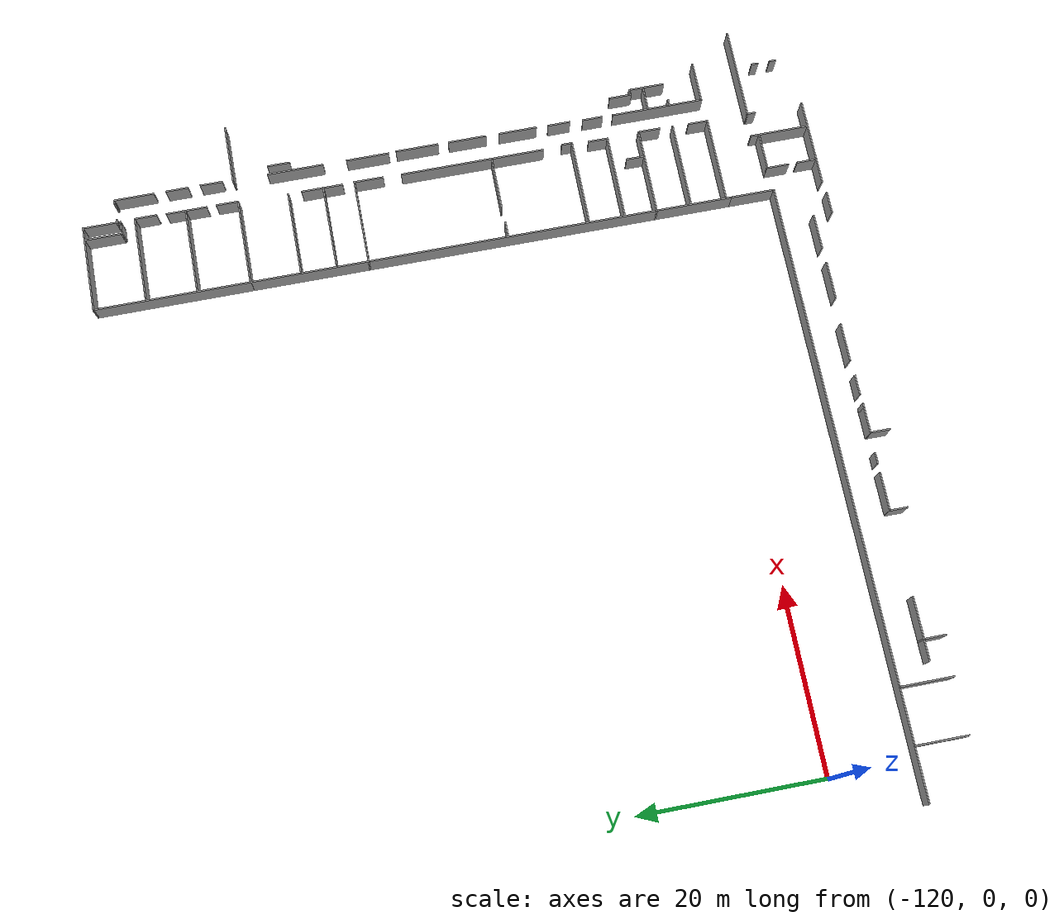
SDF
<sdf version="1.6">
 <model name="ensta_portes">
  <pose>1.28297 8.11006 0 0 -0 0</pose>
  <link name="Wall_469">
   <collision name="Wall_469_Collision">
    <geometry><box><size>4.5 0.15 2.5</size></box></geometry>
    <pose>0 0 1.25 0 -0 0</pose>
   </collision>
   <visual name="Wall_469_Visual">
    <pose>0 0 1.25 0 -0 0</pose>
    <geometry><box><size>4.5 0.15 2.5</size></box></geometry>
    <material>
     <script><uri>file://media/materials/scripts/gazebo.material</uri><name>Gazebo/Grey</name></script>
     <ambient>1 1 1 1</ambient>
    </material>
    <meta><layer>0</layer></meta>
   </visual>
   <pose>-46.3122 52.5283 0 0 -0 -1.5708</pose>
  </link>
  <link name="Wall_473">
   <collision name="Wall_473_Collision">
    <geometry><box><size>2.5 0.15 2.5</size></box></geometry>
    <pose>0 0 1.25 0 -0 0</pose>
   </collision>
   <visual name="Wall_473_Visual">
    <pose>0 0 1.25 0 -0 0</pose>
    <geometry><box><size>2.5 0.15 2.5</size></box></geometry>
    <material>
     <script><uri>file://media/materials/scripts/gazebo.material</uri><name>Gazebo/Grey</name></script>
     <ambient>1 1 1 1</ambient>
    </material>
    <meta><layer>0</layer></meta>
   </visual>
   <pose>-46.3118 47.7487 0 0 -0 -1.5708</pose>
  </link>
  <link name="Wall_477">
   <collision name="Wall_477_Collision">
    <geometry><box><size>2.5 0.15 2.5</size></box></geometry>
    <pose>0 0 1.25 0 -0 0</pose>
   </collision>
   <visual name="Wall_477_Visual">
    <pose>0 0 1.25 0 -0 0</pose>
    <geometry><box><size>2.5 0.15 2.5</size></box></geometry>
    <material>
     <script><uri>file://media/materials/scripts/gazebo.material</uri><name>Gazebo/Grey</name></script>
     <ambient>1 1 1 1</ambient>
    </material>
    <meta><layer>0</layer></meta>
   </visual>
   <pose>-46.3112 43.9271 0 0 -0 -1.5708</pose>
  </link>
  <link name="Wall_479">
   <collision name="Wall_479_Collision">
    <geometry><box><size>6.55968 0.15 2.5</size></box></geometry>
    <pose>0 0 1.25 0 -0 0</pose>
   </collision>
   <visual name="Wall_479_Visual">
    <pose>0 0 1.25 0 -0 0</pose>
    <geometry><box><size>6.55968 0.15 2.5</size></box></geometry>
    <material>
     <script><uri>file://media/materials/scripts/gazebo.material</uri><name>Gazebo/Grey</name></script>
     <ambient>1 1 1 1</ambient>
    </material>
    <meta><layer>0</layer></meta>
   </visual>
   <pose>-43.1663 41.5156 0 0 -0 -0.000377</pose>
  </link>
  <link name="Wall_482">
   <collision name="Wall_482_Collision">
    <geometry><box><size>0.5 0.15 2.5</size></box></geometry>
    <pose>0 0 1.25 0 -0 0</pose>
   </collision>
   <visual name="Wall_482_Visual">
    <pose>0 0 1.25 0 -0 0</pose>
    <geometry><box><size>0.5 0.15 2.5</size></box></geometry>
    <material>
     <script><uri>file://media/materials/scripts/gazebo.material</uri><name>Gazebo/Grey</name></script>
     <ambient>1 1 1 1</ambient>
    </material>
    <meta><layer>0</layer></meta>
   </visual>
   <pose>-46.4872 54.7033 0 0 -0 3.14159</pose>
  </link>
  <link name="Wall_485">
   <collision name="Wall_485_Collision">
    <geometry><box><size>0.5 0.15 2.5</size></box></geometry>
    <pose>0 0 1.25 0 -0 0</pose>
   </collision>
   <visual name="Wall_485_Visual">
    <pose>0 0 1.25 0 -0 0</pose>
    <geometry><box><size>0.5 0.15 2.5</size></box></geometry>
    <material>
     <script><uri>file://media/materials/scripts/gazebo.material</uri><name>Gazebo/Grey</name></script>
     <ambient>1 1 1 1</ambient>
    </material>
    <meta><layer>0</layer></meta>
   </visual>
   <pose>-48.7909 54.702 0 0 -0 0</pose>
  </link>
  <link name="Wall_487">
   <collision name="Wall_487_Collision">
    <geometry><box><size>4.25 0.15 2.5</size></box></geometry>
    <pose>0 0 1.25 0 -0 0</pose>
   </collision>
   <visual name="Wall_487_Visual">
    <pose>0 0 1.25 0 -0 0</pose>
    <geometry><box><size>4.25 0.15 2.5</size></box></geometry>
    <material>
     <script><uri>file://media/materials/scripts/gazebo.material</uri><name>Gazebo/Grey</name></script>
     <ambient>1 1 1 1</ambient>
    </material>
    <meta><layer>0</layer></meta>
   </visual>
   <pose>-48.9609 56.3858 0 0 -0 1.5708</pose>
  </link>
  <link name="Wall_488">
   <collision name="Wall_488_Collision">
    <geometry><box><size>9.75 0.15 2.5</size></box></geometry>
    <pose>0 0 1.25 0 -0 0</pose>
   </collision>
   <visual name="Wall_488_Visual">
    <pose>0 0 1.25 0 -0 0</pose>
    <geometry><box><size>9.75 0.15 2.5</size></box></geometry>
    <material>
     <script><uri>file://media/materials/scripts/gazebo.material</uri><name>Gazebo/Grey</name></script>
     <ambient>1 1 1 1</ambient>
    </material>
    <meta><layer>0</layer></meta>
   </visual>
   <pose>-53.7609 58.4358 0 0 -0 3.14159</pose>
  </link>
  <link name="Wall_490">
   <collision name="Wall_490_Collision">
    <geometry><box><size>17.25 0.15 2.5</size></box></geometry>
    <pose>0 0 1.25 0 -0 0</pose>
   </collision>
   <visual name="Wall_490_Visual">
    <pose>0 0 1.25 0 -0 0</pose>
    <geometry><box><size>17.25 0.15 2.5</size></box></geometry>
    <material>
     <script><uri>file://media/materials/scripts/gazebo.material</uri><name>Gazebo/Grey</name></script>
     <ambient>1 1 1 1</ambient>
    </material>
    <meta><layer>0</layer></meta>
   </visual>
   <pose>-58.5609 49.8858 0 0 -0 -1.5708</pose>
  </link>
  <link name="Wall_491">
   <collision name="Wall_491_Collision">
    <geometry><box><size>9.75 0.15 2.5</size></box></geometry>
    <pose>0 0 1.25 0 -0 0</pose>
   </collision>
   <visual name="Wall_491_Visual">
    <pose>0 0 1.25 0 -0 0</pose>
    <geometry><box><size>9.75 0.15 2.5</size></box></geometry>
    <material>
     <script><uri>file://media/materials/scripts/gazebo.material</uri><name>Gazebo/Grey</name></script>
     <ambient>1 1 1 1</ambient>
    </material>
    <meta><layer>0</layer></meta>
   </visual>
   <pose>-53.7609 41.3358 0 0 -0 0</pose>
  </link>
  <link name="Wall_492">
   <collision name="Wall_492_Collision">
    <geometry><box><size>2.5 0.15 2.5</size></box></geometry>
    <pose>0 0 1.25 0 -0 0</pose>
   </collision>
   <visual name="Wall_492_Visual">
    <pose>0 0 1.25 0 -0 0</pose>
    <geometry><box><size>2.5 0.15 2.5</size></box></geometry>
    <material>
     <script><uri>file://media/materials/scripts/gazebo.material</uri><name>Gazebo/Grey</name></script>
     <ambient>1 1 1 1</ambient>
    </material>
    <meta><layer>0</layer></meta>
   </visual>
   <pose>-48.9609 42.5108 0 0 -0 1.5708</pose>
  </link>
  <link name="Wall_494">
   <collision name="Wall_494_Collision">
    <geometry><box><size>9.5 0.15 2.5</size></box></geometry>
    <pose>0 0 1.25 0 -0 0</pose>
   </collision>
   <visual name="Wall_494_Visual">
    <pose>0 0 1.25 0 -0 0</pose>
    <geometry><box><size>9.5 0.15 2.5</size></box></geometry>
    <material>
     <script><uri>file://media/materials/scripts/gazebo.material</uri><name>Gazebo/Grey</name></script>
     <ambient>1 1 1 1</ambient>
    </material>
    <meta><layer>0</layer></meta>
   </visual>
   <pose>-53.7357 47.141 0 0 -0 0</pose>
  </link>
  <link name="Wall_496">
   <collision name="Wall_496_Collision">
    <geometry><box><size>4.5 0.15 2.5</size></box></geometry>
    <pose>0 0 1.25 0 -0 0</pose>
   </collision>
   <visual name="Wall_496_Visual">
    <pose>0 0 1.25 0 -0 0</pose>
    <geometry><box><size>4.5 0.15 2.5</size></box></geometry>
    <material>
     <script><uri>file://media/materials/scripts/gazebo.material</uri><name>Gazebo/Grey</name></script>
     <ambient>1 1 1 1</ambient>
    </material>
    <meta><layer>0</layer></meta>
   </visual>
   <pose>-48.9747 47.0376 0 0 -0 -1.5708</pose>
  </link>
  <link name="Wall_498">
   <collision name="Wall_498_Collision">
    <geometry><box><size>9.75 0.15 2.5</size></box></geometry>
    <pose>0 0 1.25 0 -0 0</pose>
   </collision>
   <visual name="Wall_498_Visual">
    <pose>0 0 1.25 0 -0 0</pose>
    <geometry><box><size>9.75 0.15 2.5</size></box></geometry>
    <material>
     <script><uri>file://media/materials/scripts/gazebo.material</uri><name>Gazebo/Grey</name></script>
     <ambient>1 1 1 1</ambient>
    </material>
    <meta><layer>0</layer></meta>
   </visual>
   <pose>-53.6978 52.7407 0 0 -0 0</pose>
  </link>
  <link name="Wall_499">
   <collision name="Wall_499_Collision">
    <geometry><box><size>2.5 0.15 2.5</size></box></geometry>
    <pose>0 0 1.25 0 -0 0</pose>
   </collision>
   <visual name="Wall_499_Visual">
    <pose>0 0 1.25 0 -0 0</pose>
    <geometry><box><size>2.5 0.15 2.5</size></box></geometry>
    <material>
     <script><uri>file://media/materials/scripts/gazebo.material</uri><name>Gazebo/Grey</name></script>
     <ambient>1 1 1 1</ambient>
    </material>
    <meta><layer>0</layer></meta>
   </visual>
   <pose>-48.8978 51.5657 0 0 -0 -1.5708</pose>
  </link>
  <link name="Wall_501">
   <collision name="Wall_501_Collision">
    <geometry><box><size>4.25 0.15 2.5</size></box></geometry>
    <pose>0 0 1.25 0 -0 0</pose>
   </collision>
   <visual name="Wall_501_Visual">
    <pose>0 0 1.25 0 -0 0</pose>
    <geometry><box><size>4.25 0.15 2.5</size></box></geometry>
    <material>
     <script><uri>file://media/materials/scripts/gazebo.material</uri><name>Gazebo/Grey</name></script>
     <ambient>1 1 1 1</ambient>
    </material>
    <meta><layer>0</layer></meta>
   </visual>
   <pose>-50.364 56.3784 0 0 -0 -1.5708</pose>
  </link>
  <link name="Wall_502">
   <collision name="Wall_502_Collision">
    <geometry><box><size>1.55314 0.15 2.5</size></box></geometry>
    <pose>0 0 1.25 0 -0 0</pose>
   </collision>
   <visual name="Wall_502_Visual">
    <pose>0 0 1.25 0 -0 0</pose>
    <geometry><box><size>1.55314 0.15 2.5</size></box></geometry>
    <material>
     <script><uri>file://media/materials/scripts/gazebo.material</uri><name>Gazebo/Grey</name></script>
     <ambient>1 1 1 1</ambient>
    </material>
    <meta><layer>0</layer></meta>
   </visual>
   <pose>-49.6624 54.3321 0 0 -0 0.005278</pose>
  </link>
  <link name="Wall_505">
   <collision name="Wall_505_Collision">
    <geometry><box><size>53.5 0.15 2.5</size></box></geometry>
    <pose>0 0 1.25 0 -0 0</pose>
   </collision>
   <visual name="Wall_505_Visual">
    <pose>0 0 1.25 0 -0 0</pose>
    <geometry><box><size>53.5 0.15 2.5</size></box></geometry>
    <material>
     <script><uri>file://media/materials/scripts/gazebo.material</uri><name>Gazebo/Grey</name></script>
     <ambient>1 1 1 1</ambient>
    </material>
    <meta><layer>0</layer></meta>
   </visual>
   <pose>-58.5609 14.6608 0 0 -0 -1.5708</pose>
  </link>
  <link name="Wall_507">
   <collision name="Wall_507_Collision">
    <geometry><box><size>9.5 0.15 2.5</size></box></geometry>
    <pose>0 0 1.25 0 -0 0</pose>
   </collision>
   <visual name="Wall_507_Visual">
    <pose>0 0 1.25 0 -0 0</pose>
    <geometry><box><size>9.5 0.15 2.5</size></box></geometry>
    <material>
     <script><uri>file://media/materials/scripts/gazebo.material</uri><name>Gazebo/Grey</name></script>
     <ambient>1 1 1 1</ambient>
    </material>
    <meta><layer>0</layer></meta>
   </visual>
   <pose>-53.7488 -11.4871 0 0 -0 0</pose>
  </link>
  <link name="Wall_508">
   <collision name="Wall_508_Collision">
    <geometry><box><size>2.25 0.15 2.5</size></box></geometry>
    <pose>0 0 1.25 0 -0 0</pose>
   </collision>
   <visual name="Wall_508_Visual">
    <pose>0 0 1.25 0 -0 0</pose>
    <geometry><box><size>2.25 0.15 2.5</size></box></geometry>
    <material>
     <script><uri>file://media/materials/scripts/gazebo.material</uri><name>Gazebo/Grey</name></script>
     <ambient>1 1 1 1</ambient>
    </material>
    <meta><layer>0</layer></meta>
   </visual>
   <pose>-49.0738 -10.4371 0 0 -0 1.5708</pose>
  </link>
  <link name="Wall_510">
   <collision name="Wall_510_Collision">
    <geometry><box><size>9.5 0.15 2.5</size></box></geometry>
    <pose>0 0 1.25 0 -0 0</pose>
   </collision>
   <visual name="Wall_510_Visual">
    <pose>0 0 1.25 0 -0 0</pose>
    <geometry><box><size>9.5 0.15 2.5</size></box></geometry>
    <material>
     <script><uri>file://media/materials/scripts/gazebo.material</uri><name>Gazebo/Grey</name></script>
     <ambient>1 1 1 1</ambient>
    </material>
    <meta><layer>0</layer></meta>
   </visual>
   <pose>-53.7488 -7.54481 0 0 -0 0</pose>
  </link>
  <link name="Wall_512">
   <collision name="Wall_512_Collision">
    <geometry><box><size>9.75 0.15 2.5</size></box></geometry>
    <pose>0 0 1.25 0 -0 0</pose>
   </collision>
   <visual name="Wall_512_Visual">
    <pose>0 0 1.25 0 -0 0</pose>
    <geometry><box><size>9.75 0.15 2.5</size></box></geometry>
    <material>
     <script><uri>file://media/materials/scripts/gazebo.material</uri><name>Gazebo/Grey</name></script>
     <ambient>1 1 1 1</ambient>
    </material>
    <meta><layer>0</layer></meta>
   </visual>
   <pose>-53.784 -3.68033 0 0 -0 0</pose>
  </link>
  <link name="Wall_513">
   <collision name="Wall_513_Collision">
    <geometry><box><size>2.5 0.15 2.5</size></box></geometry>
    <pose>0 0 1.25 0 -0 0</pose>
   </collision>
   <visual name="Wall_513_Visual">
    <pose>0 0 1.25 0 -0 0</pose>
    <geometry><box><size>2.5 0.15 2.5</size></box></geometry>
    <material>
     <script><uri>file://media/materials/scripts/gazebo.material</uri><name>Gazebo/Grey</name></script>
     <ambient>1 1 1 1</ambient>
    </material>
    <meta><layer>0</layer></meta>
   </visual>
   <pose>-48.984 -4.85533 0 0 -0 -1.5708</pose>
  </link>
  <link name="Wall_515">
   <collision name="Wall_515_Collision">
    <geometry><box><size>2 0.15 2.5</size></box></geometry>
    <pose>0 0 1.25 0 -0 0</pose>
   </collision>
   <visual name="Wall_515_Visual">
    <pose>0 0 1.25 0 -0 0</pose>
    <geometry><box><size>2 0.15 2.5</size></box></geometry>
    <material>
     <script><uri>file://media/materials/scripts/gazebo.material</uri><name>Gazebo/Grey</name></script>
     <ambient>1 1 1 1</ambient>
    </material>
    <meta><layer>0</layer></meta>
   </visual>
   <pose>-51.9715 -2.67448 0 0 -0 -1.5708</pose>
  </link>
  <link name="Wall_517">
   <collision name="Wall_517_Collision">
    <geometry><box><size>9.5 0.15 2.5</size></box></geometry>
    <pose>0 0 1.25 0 -0 0</pose>
   </collision>
   <visual name="Wall_517_Visual">
    <pose>0 0 1.25 0 -0 0</pose>
    <geometry><box><size>9.5 0.15 2.5</size></box></geometry>
    <material>
     <script><uri>file://media/materials/scripts/gazebo.material</uri><name>Gazebo/Grey</name></script>
     <ambient>1 1 1 1</ambient>
    </material>
    <meta><layer>0</layer></meta>
   </visual>
   <pose>-53.7767 -0.109576 0 0 -0 0</pose>
  </link>
  <link name="Wall_518">
   <collision name="Wall_518_Collision">
    <geometry><box><size>2.25 0.15 2.5</size></box></geometry>
    <pose>0 0 1.25 0 -0 0</pose>
   </collision>
   <visual name="Wall_518_Visual">
    <pose>0 0 1.25 0 -0 0</pose>
    <geometry><box><size>2.25 0.15 2.5</size></box></geometry>
    <material>
     <script><uri>file://media/materials/scripts/gazebo.material</uri><name>Gazebo/Grey</name></script>
     <ambient>1 1 1 1</ambient>
    </material>
    <meta><layer>0</layer></meta>
   </visual>
   <pose>-49.1017 0.940424 0 0 -0 1.5708</pose>
  </link>
  <link name="Wall_520">
   <collision name="Wall_520_Collision">
    <geometry><box><size>9.75 0.15 2.5</size></box></geometry>
    <pose>0 0 1.25 0 -0 0</pose>
   </collision>
   <visual name="Wall_520_Visual">
    <pose>0 0 1.25 0 -0 0</pose>
    <geometry><box><size>9.75 0.15 2.5</size></box></geometry>
    <material>
     <script><uri>file://media/materials/scripts/gazebo.material</uri><name>Gazebo/Grey</name></script>
     <ambient>1 1 1 1</ambient>
    </material>
    <meta><layer>0</layer></meta>
   </visual>
   <pose>-53.7046 3.88437 0 0 -0 0</pose>
  </link>
  <link name="Wall_521">
   <collision name="Wall_521_Collision">
    <geometry><box><size>1.25 0.15 2.5</size></box></geometry>
    <pose>0 0 1.25 0 -0 0</pose>
   </collision>
   <visual name="Wall_521_Visual">
    <pose>0 0 1.25 0 -0 0</pose>
    <geometry><box><size>1.25 0.15 2.5</size></box></geometry>
    <material>
     <script><uri>file://media/materials/scripts/gazebo.material</uri><name>Gazebo/Grey</name></script>
     <ambient>1 1 1 1</ambient>
    </material>
    <meta><layer>0</layer></meta>
   </visual>
   <pose>-48.9046 4.43437 0 0 -0 1.5708</pose>
  </link>
  <link name="Wall_523">
   <collision name="Wall_523_Collision">
    <geometry><box><size>1.75 0.15 2.5</size></box></geometry>
    <pose>0 0 1.25 0 -0 0</pose>
   </collision>
   <visual name="Wall_523_Visual">
    <pose>0 0 1.25 0 -0 0</pose>
    <geometry><box><size>1.75 0.15 2.5</size></box></geometry>
    <material>
     <script><uri>file://media/materials/scripts/gazebo.material</uri><name>Gazebo/Grey</name></script>
     <ambient>1 1 1 1</ambient>
    </material>
    <meta><layer>0</layer></meta>
   </visual>
   <pose>-57.6517 12.9038 0 0 -0 0</pose>
  </link>
  <link name="Wall_525">
   <collision name="Wall_525_Collision">
    <geometry><box><size>6 0.15 2.5</size></box></geometry>
    <pose>0 0 1.25 0 -0 0</pose>
   </collision>
   <visual name="Wall_525_Visual">
    <pose>0 0 1.25 0 -0 0</pose>
    <geometry><box><size>6 0.15 2.5</size></box></geometry>
    <material>
     <script><uri>file://media/materials/scripts/gazebo.material</uri><name>Gazebo/Grey</name></script>
     <ambient>1 1 1 1</ambient>
    </material>
    <meta><layer>0</layer></meta>
   </visual>
   <pose>-52.0353 12.9832 0 0 -0 0</pose>
  </link>
  <link name="Wall_527">
   <collision name="Wall_527_Collision">
    <geometry><box><size>16 0.15 2.5</size></box></geometry>
    <pose>0 0 1.25 0 -0 0</pose>
   </collision>
   <visual name="Wall_527_Visual">
    <pose>0 0 1.25 0 -0 0</pose>
    <geometry><box><size>16 0.15 2.5</size></box></geometry>
    <material>
     <script><uri>file://media/materials/scripts/gazebo.material</uri><name>Gazebo/Grey</name></script>
     <ambient>1 1 1 1</ambient>
    </material>
    <meta><layer>0</layer></meta>
   </visual>
   <pose>-49.121 15.1568 0 0 -0 1.5708</pose>
  </link>
  <link name="Wall_529">
   <collision name="Wall_529_Collision">
    <geometry><box><size>9.65091 0.15 2.5</size></box></geometry>
    <pose>0 0 1.25 0 -0 0</pose>
   </collision>
   <visual name="Wall_529_Visual">
    <pose>0 0 1.25 0 -0 0</pose>
    <geometry><box><size>9.65091 0.15 2.5</size></box></geometry>
    <material>
     <script><uri>file://media/materials/scripts/gazebo.material</uri><name>Gazebo/Grey</name></script>
     <ambient>1 1 1 1</ambient>
    </material>
    <meta><layer>0</layer></meta>
   </visual>
   <pose>-53.8122 28.381 0 0 -0 0.00217</pose>
  </link>
  <link name="Wall_530">
   <collision name="Wall_530_Collision">
    <geometry><box><size>3.30626 0.15 2.5</size></box></geometry>
    <pose>0 0 1.25 0 -0 0</pose>
   </collision>
   <visual name="Wall_530_Visual">
    <pose>0 0 1.25 0 -0 0</pose>
    <geometry><box><size>3.30626 0.15 2.5</size></box></geometry>
    <material>
     <script><uri>file://media/materials/scripts/gazebo.material</uri><name>Gazebo/Grey</name></script>
     <ambient>1 1 1 1</ambient>
    </material>
    <meta><layer>0</layer></meta>
   </visual>
   <pose>-49.0675 26.8133 0 0 -0 -1.57442</pose>
  </link>
  <link name="Wall_532">
   <collision name="Wall_532_Collision">
    <geometry><box><size>9.5 0.15 2.5</size></box></geometry>
    <pose>0 0 1.25 0 -0 0</pose>
   </collision>
   <visual name="Wall_532_Visual">
    <pose>0 0 1.25 0 -0 0</pose>
    <geometry><box><size>9.5 0.15 2.5</size></box></geometry>
    <material>
     <script><uri>file://media/materials/scripts/gazebo.material</uri><name>Gazebo/Grey</name></script>
     <ambient>1 1 1 1</ambient>
    </material>
    <meta><layer>0</layer></meta>
   </visual>
   <pose>-53.7851 31.8701 0 0 -0 0</pose>
  </link>
  <link name="Wall_533">
   <collision name="Wall_533_Collision">
    <geometry><box><size>2.25 0.15 2.5</size></box></geometry>
    <pose>0 0 1.25 0 -0 0</pose>
   </collision>
   <visual name="Wall_533_Visual">
    <pose>0 0 1.25 0 -0 0</pose>
    <geometry><box><size>2.25 0.15 2.5</size></box></geometry>
    <material>
     <script><uri>file://media/materials/scripts/gazebo.material</uri><name>Gazebo/Grey</name></script>
     <ambient>1 1 1 1</ambient>
    </material>
    <meta><layer>0</layer></meta>
   </visual>
   <pose>-49.1101 30.8201 0 0 -0 -1.5708</pose>
  </link>
  <link name="Wall_535">
   <collision name="Wall_535_Collision">
    <geometry><box><size>2.5 0.15 2.5</size></box></geometry>
    <pose>0 0 1.25 0 -0 0</pose>
   </collision>
   <visual name="Wall_535_Visual">
    <pose>0 0 1.25 0 -0 0</pose>
    <geometry><box><size>2.5 0.15 2.5</size></box></geometry>
    <material>
     <script><uri>file://media/materials/scripts/gazebo.material</uri><name>Gazebo/Grey</name></script>
     <ambient>1 1 1 1</ambient>
    </material>
    <meta><layer>0</layer></meta>
   </visual>
   <pose>-49.1101 33.0451 0 0 -0 1.5708</pose>
  </link>
  <link name="Wall_537">
   <collision name="Wall_537_Collision">
    <geometry><box><size>9.5 0.15 2.5</size></box></geometry>
    <pose>0 0 1.25 0 -0 0</pose>
   </collision>
   <visual name="Wall_537_Visual">
    <pose>0 0 1.25 0 -0 0</pose>
    <geometry><box><size>9.5 0.15 2.5</size></box></geometry>
    <material>
     <script><uri>file://media/materials/scripts/gazebo.material</uri><name>Gazebo/Grey</name></script>
     <ambient>1 1 1 1</ambient>
    </material>
    <meta><layer>0</layer></meta>
   </visual>
   <pose>-53.8189 35.7869 0 0 -0 0</pose>
  </link>
  <link name="Wall_550">
   <collision name="Wall_550_Collision">
    <geometry><box><size>4.5 0.15 2.5</size></box></geometry>
    <pose>0 0 1.25 0 -0 0</pose>
   </collision>
   <visual name="Wall_550_Visual">
    <pose>0 0 1.25 0 -0 0</pose>
    <geometry><box><size>4.5 0.15 2.5</size></box></geometry>
    <material>
     <script><uri>file://media/materials/scripts/gazebo.material</uri><name>Gazebo/Grey</name></script>
     <ambient>1 1 1 1</ambient>
    </material>
    <meta><layer>0</layer></meta>
   </visual>
   <pose>-44.1564 -11.3717 0 0 -0 0</pose>
  </link>
  <link name="Wall_552">
   <collision name="Wall_552_Collision">
    <geometry><box><size>10.2038 0.15 2.5</size></box></geometry>
    <pose>0 0 1.25 0 -0 0</pose>
   </collision>
   <visual name="Wall_552_Visual">
    <pose>0 0 1.25 0 -0 0</pose>
    <geometry><box><size>10.2038 0.15 2.5</size></box></geometry>
    <material>
     <script><uri>file://media/materials/scripts/gazebo.material</uri><name>Gazebo/Grey</name></script>
     <ambient>1 1 1 1</ambient>
    </material>
    <meta><layer>0</layer></meta>
   </visual>
   <pose>-46.4305 -6.35933 0 0 -0 -1.56963</pose>
  </link>
  <link name="Wall_558">
   <collision name="Wall_558_Collision">
    <geometry><box><size>2.5 0.15 2.5</size></box></geometry>
    <pose>0 0 1.25 0 -0 0</pose>
   </collision>
   <visual name="Wall_558_Visual">
    <pose>0 0 1.25 0 -0 0</pose>
    <geometry><box><size>2.5 0.15 2.5</size></box></geometry>
    <material>
     <script><uri>file://media/materials/scripts/gazebo.material</uri><name>Gazebo/Grey</name></script>
     <ambient>1 1 1 1</ambient>
    </material>
    <meta><layer>0</layer></meta>
   </visual>
   <pose>-44.3428 -2.56274 0 0 -0 -1.5708</pose>
  </link>
  <link name="Wall_559">
   <collision name="Wall_559_Collision">
    <geometry><box><size>0.75 0.15 2.5</size></box></geometry>
    <pose>0 0 1.25 0 -0 0</pose>
   </collision>
   <visual name="Wall_559_Visual">
    <pose>0 0 1.25 0 -0 0</pose>
    <geometry><box><size>0.75 0.15 2.5</size></box></geometry>
    <material>
     <script><uri>file://media/materials/scripts/gazebo.material</uri><name>Gazebo/Grey</name></script>
     <ambient>1 1 1 1</ambient>
    </material>
    <meta><layer>0</layer></meta>
   </visual>
   <pose>-44.0428 -3.73774 0 0 -0 0</pose>
  </link>
  <link name="Wall_560">
   <collision name="Wall_560_Collision">
    <geometry><box><size>4 0.15 2.5</size></box></geometry>
    <pose>0 0 1.25 0 -0 0</pose>
   </collision>
   <visual name="Wall_560_Visual">
    <pose>0 0 1.25 0 -0 0</pose>
    <geometry><box><size>4 0.15 2.5</size></box></geometry>
    <material>
     <script><uri>file://media/materials/scripts/gazebo.material</uri><name>Gazebo/Grey</name></script>
     <ambient>1 1 1 1</ambient>
    </material>
    <meta><layer>0</layer></meta>
   </visual>
   <pose>-43.7428 -5.66274 0 0 -0 -1.5708</pose>
  </link>
  <link name="Wall_564">
   <collision name="Wall_564_Collision">
    <geometry><box><size>2.68329 0.15 2.5</size></box></geometry>
    <pose>0 0 1.25 0 -0 0</pose>
   </collision>
   <visual name="Wall_564_Visual">
    <pose>0 0 1.25 0 -0 0</pose>
    <geometry><box><size>2.68329 0.15 2.5</size></box></geometry>
    <material>
     <script><uri>file://media/materials/scripts/gazebo.material</uri><name>Gazebo/Grey</name></script>
     <ambient>1 1 1 1</ambient>
    </material>
    <meta><layer>0</layer></meta>
   </visual>
   <pose>-45.0229 -5.28625 0 0 -0 -0.004006</pose>
  </link>
  <link name="Wall_566">
   <collision name="Wall_566_Collision">
    <geometry><box><size>0.75 0.15 2.5</size></box></geometry>
    <pose>0 0 1.25 0 -0 0</pose>
   </collision>
   <visual name="Wall_566_Visual">
    <pose>0 0 1.25 0 -0 0</pose>
    <geometry><box><size>0.75 0.15 2.5</size></box></geometry>
    <material>
     <script><uri>file://media/materials/scripts/gazebo.material</uri><name>Gazebo/Grey</name></script>
     <ambient>1 1 1 1</ambient>
    </material>
    <meta><layer>0</layer></meta>
   </visual>
   <pose>-46.0293 -7.73485 0 0 -0 0</pose>
  </link>
  <link name="Wall_570">
   <collision name="Wall_570_Collision">
    <geometry><box><size>2.25 0.15 2.5</size></box></geometry>
    <pose>0 0 1.25 0 -0 0</pose>
   </collision>
   <visual name="Wall_570_Visual">
    <pose>0 0 1.25 0 -0 0</pose>
    <geometry><box><size>2.25 0.15 2.5</size></box></geometry>
    <material>
     <script><uri>file://media/materials/scripts/gazebo.material</uri><name>Gazebo/Grey</name></script>
     <ambient>1 1 1 1</ambient>
    </material>
    <meta><layer>0</layer></meta>
   </visual>
   <pose>-46.4112 1.03105 0 0 -0 -1.5708</pose>
  </link>
  <link name="Wall_572">
   <collision name="Wall_572_Collision">
    <geometry><box><size>2.5 0.15 2.5</size></box></geometry>
    <pose>0 0 1.25 0 -0 0</pose>
   </collision>
   <visual name="Wall_572_Visual">
    <pose>0 0 1.25 0 -0 0</pose>
    <geometry><box><size>2.5 0.15 2.5</size></box></geometry>
    <material>
     <script><uri>file://media/materials/scripts/gazebo.material</uri><name>Gazebo/Grey</name></script>
     <ambient>1 1 1 1</ambient>
    </material>
    <meta><layer>0</layer></meta>
   </visual>
   <pose>-46.3487 4.86109 0 0 -0 -1.5708</pose>
  </link>
  <link name="Wall_575">
   <collision name="Wall_575_Collision">
    <geometry><box><size>4.25 0.15 2.5</size></box></geometry>
    <pose>0 0 1.25 0 -0 0</pose>
   </collision>
   <visual name="Wall_575_Visual">
    <pose>0 0 1.25 0 -0 0</pose>
    <geometry><box><size>4.25 0.15 2.5</size></box></geometry>
    <material>
     <script><uri>file://media/materials/scripts/gazebo.material</uri><name>Gazebo/Grey</name></script>
     <ambient>1 1 1 1</ambient>
    </material>
    <meta><layer>0</layer></meta>
   </visual>
   <pose>-46.3088 9.5206 0 0 -0 -1.5708</pose>
  </link>
  <link name="Wall_578">
   <collision name="Wall_578_Collision">
    <geometry><box><size>4.25 0.15 2.5</size></box></geometry>
    <pose>0 0 1.25 0 -0 0</pose>
   </collision>
   <visual name="Wall_578_Visual">
    <pose>0 0 1.25 0 -0 0</pose>
    <geometry><box><size>4.25 0.15 2.5</size></box></geometry>
    <material>
     <script><uri>file://media/materials/scripts/gazebo.material</uri><name>Gazebo/Grey</name></script>
     <ambient>1 1 1 1</ambient>
    </material>
    <meta><layer>0</layer></meta>
   </visual>
   <pose>-46.2945 15.2404 0 0 -0 -1.5708</pose>
  </link>
  <link name="Wall_581">
   <collision name="Wall_581_Collision">
    <geometry><box><size>4.75 0.15 2.5</size></box></geometry>
    <pose>0 0 1.25 0 -0 0</pose>
   </collision>
   <visual name="Wall_581_Visual">
    <pose>0 0 1.25 0 -0 0</pose>
    <geometry><box><size>4.75 0.15 2.5</size></box></geometry>
    <material>
     <script><uri>file://media/materials/scripts/gazebo.material</uri><name>Gazebo/Grey</name></script>
     <ambient>1 1 1 1</ambient>
    </material>
    <meta><layer>0</layer></meta>
   </visual>
   <pose>-46.285 20.9046 0 0 -0 -1.5708</pose>
  </link>
  <link name="Wall_585">
   <collision name="Wall_585_Collision">
    <geometry><box><size>4.75 0.15 2.5</size></box></geometry>
    <pose>0 0 1.25 0 -0 0</pose>
   </collision>
   <visual name="Wall_585_Visual">
    <pose>0 0 1.25 0 -0 0</pose>
    <geometry><box><size>4.75 0.15 2.5</size></box></geometry>
    <material>
     <script><uri>file://media/materials/scripts/gazebo.material</uri><name>Gazebo/Grey</name></script>
     <ambient>1 1 1 1</ambient>
    </material>
    <meta><layer>0</layer></meta>
   </visual>
   <pose>-46.3512 26.4731 0 0 -0 -1.5708</pose>
  </link>
  <link name="Wall_590">
   <collision name="Wall_590_Collision">
    <geometry><box><size>6.25 0.15 2.5</size></box></geometry>
    <pose>0 0 1.25 0 -0 0</pose>
   </collision>
   <visual name="Wall_590_Visual">
    <pose>0 0 1.25 0 -0 0</pose>
    <geometry><box><size>6.25 0.15 2.5</size></box></geometry>
    <material>
     <script><uri>file://media/materials/scripts/gazebo.material</uri><name>Gazebo/Grey</name></script>
     <ambient>1 1 1 1</ambient>
    </material>
    <meta><layer>0</layer></meta>
   </visual>
   <pose>-46.354 34.569 0 0 -0 -1.5708</pose>
  </link>
  <link name="Wall_592">
   <collision name="Wall_592_Collision">
    <geometry><box><size>2.5 0.15 2.5</size></box></geometry>
    <pose>0 0 1.25 0 -0 0</pose>
   </collision>
   <visual name="Wall_592_Visual">
    <pose>0 0 1.25 0 -0 0</pose>
    <geometry><box><size>2.5 0.15 2.5</size></box></geometry>
    <material>
     <script><uri>file://media/materials/scripts/gazebo.material</uri><name>Gazebo/Grey</name></script>
     <ambient>1 1 1 1</ambient>
    </material>
    <meta><layer>0</layer></meta>
   </visual>
   <pose>-45.4033 36.2924 0 0 -0 -1.5708</pose>
  </link>
  <link name="Wall_597">
   <collision name="Wall_597_Collision">
    <geometry><box><size>5 0.15 2.5</size></box></geometry>
    <pose>0 0 1.25 0 -0 0</pose>
   </collision>
   <visual name="Wall_597_Visual">
    <pose>0 0 1.25 0 -0 0</pose>
    <geometry><box><size>5 0.15 2.5</size></box></geometry>
    <material>
     <script><uri>file://media/materials/scripts/gazebo.material</uri><name>Gazebo/Grey</name></script>
     <ambient>1 1 1 1</ambient>
    </material>
    <meta><layer>0</layer></meta>
   </visual>
   <pose>-58.5609 -14.4392 0 0 -0 -1.5708</pose>
  </link>
  <link name="Wall_598">
   <collision name="Wall_598_Collision">
    <geometry><box><size>67.1 0.15 2.5</size></box></geometry>
    <pose>0 0 1.25 0 -0 0</pose>
   </collision>
   <visual name="Wall_598_Visual">
    <pose>0 0 1.25 0 -0 0</pose>
    <geometry><box><size>67.1 0.15 2.5</size></box></geometry>
    <material>
     <script><uri>file://media/materials/scripts/gazebo.material</uri><name>Gazebo/Grey</name></script>
     <ambient>1 1 1 1</ambient>
    </material>
    <meta><layer>0</layer></meta>
   </visual>
   <pose>-92.0359 -16.8651 0 0 -0 -3.14157</pose>
  </link>
  <link name="Wall_623">
   <collision name="Wall_623_Collision">
    <geometry><box><size>5.75 0.15 2.5</size></box></geometry>
    <pose>0 0 1.25 0 -0 0</pose>
   </collision>
   <visual name="Wall_623_Visual">
    <pose>0 0 1.25 0 -0 0</pose>
    <geometry><box><size>5.75 0.15 2.5</size></box></geometry>
    <material>
     <script><uri>file://media/materials/scripts/gazebo.material</uri><name>Gazebo/Grey</name></script>
     <ambient>1 1 1 1</ambient>
    </material>
    <meta><layer>0</layer></meta>
   </visual>
   <pose>-113.813 -19.7738 0 0 -0 1.5708</pose>
  </link>
  <link name="Wall_625">
   <collision name="Wall_625_Collision">
    <geometry><box><size>5.75 0.15 2.5</size></box></geometry>
    <pose>0 0 1.25 0 -0 0</pose>
   </collision>
   <visual name="Wall_625_Visual">
    <pose>0 0 1.25 0 -0 0</pose>
    <geometry><box><size>5.75 0.15 2.5</size></box></geometry>
    <material>
     <script><uri>file://media/materials/scripts/gazebo.material</uri><name>Gazebo/Grey</name></script>
     <ambient>1 1 1 1</ambient>
    </material>
    <meta><layer>0</layer></meta>
   </visual>
   <pose>-119.763 -19.7259 0 0 -0 -1.5708</pose>
  </link>
  <link name="Wall_627">
   <collision name="Wall_627_Collision">
    <geometry><box><size>6.75 0.15 2.5</size></box></geometry>
    <pose>0 0 1.25 0 -0 0</pose>
   </collision>
   <visual name="Wall_627_Visual">
    <pose>0 0 1.25 0 -0 0</pose>
    <geometry><box><size>6.75 0.15 2.5</size></box></geometry>
    <material>
     <script><uri>file://media/materials/scripts/gazebo.material</uri><name>Gazebo/Grey</name></script>
     <ambient>1 1 1 1</ambient>
    </material>
    <meta><layer>0</layer></meta>
   </visual>
   <pose>-108.505 -20.499 0 0 -0 0</pose>
  </link>
  <link name="Wall_633">
   <collision name="Wall_633_Collision">
    <geometry><box><size>2.46713 0.15 2.5</size></box></geometry>
    <pose>0 0 1.25 0 -0 0</pose>
   </collision>
   <visual name="Wall_633_Visual">
    <pose>0 0 1.25 0 -0 0</pose>
    <geometry><box><size>2.46713 0.15 2.5</size></box></geometry>
    <material>
     <script><uri>file://media/materials/scripts/gazebo.material</uri><name>Gazebo/Grey</name></script>
     <ambient>1 1 1 1</ambient>
    </material>
    <meta><layer>0</layer></meta>
   </visual>
   <pose>-109.573 -21.6463 0 0 -0 -1.56287</pose>
  </link>
  <link name="Wall_699">
   <collision name="Wall_699_Collision">
    <geometry><box><size>2 0.15 2.5</size></box></geometry>
    <pose>0 0 1.25 0 -0 0</pose>
   </collision>
   <visual name="Wall_699_Visual">
    <pose>0 0 1.25 0 -0 0</pose>
    <geometry><box><size>2 0.15 2.5</size></box></geometry>
    <material>
     <script><uri>file://media/materials/scripts/gazebo.material</uri><name>Gazebo/Grey</name></script>
     <ambient>1 1 1 1</ambient>
    </material>
    <meta><layer>0</layer></meta>
   </visual>
   <pose>-95.9613 -21.352 0 0 -0 1.5708</pose>
  </link>
  <link name="Wall_700">
   <collision name="Wall_700_Collision">
    <geometry><box><size>4.25 0.15 2.5</size></box></geometry>
    <pose>0 0 1.25 0 -0 0</pose>
   </collision>
   <visual name="Wall_700_Visual">
    <pose>0 0 1.25 0 -0 0</pose>
    <geometry><box><size>4.25 0.15 2.5</size></box></geometry>
    <material>
     <script><uri>file://media/materials/scripts/gazebo.material</uri><name>Gazebo/Grey</name></script>
     <ambient>1 1 1 1</ambient>
    </material>
    <meta><layer>0</layer></meta>
   </visual>
   <pose>-93.9113 -20.427 0 0 -0 0</pose>
  </link>
  <link name="Wall_705">
   <collision name="Wall_705_Collision">
    <geometry><box><size>1.25 0.15 2.5</size></box></geometry>
    <pose>0 0 1.25 0 -0 0</pose>
   </collision>
   <visual name="Wall_705_Visual">
    <pose>0 0 1.25 0 -0 0</pose>
    <geometry><box><size>1.25 0.15 2.5</size></box></geometry>
    <material>
     <script><uri>file://media/materials/scripts/gazebo.material</uri><name>Gazebo/Grey</name></script>
     <ambient>1 1 1 1</ambient>
    </material>
    <meta><layer>0</layer></meta>
   </visual>
   <pose>-90.2505 -20.4352 0 0 -0 0</pose>
  </link>
  <link name="Wall_753">
   <collision name="Wall_753_Collision">
    <geometry><box><size>3 0.15 2.5</size></box></geometry>
    <pose>0 0 1.25 0 -0 0</pose>
   </collision>
   <visual name="Wall_753_Visual">
    <pose>0 0 1.25 0 -0 0</pose>
    <geometry><box><size>3 0.15 2.5</size></box></geometry>
    <material>
     <script><uri>file://media/materials/scripts/gazebo.material</uri><name>Gazebo/Grey</name></script>
     <ambient>1 1 1 1</ambient>
    </material>
    <meta><layer>0</layer></meta>
   </visual>
   <pose>-86.0016 -20.5095 0 0 -0 3.14159</pose>
  </link>
  <link name="Wall_754">
   <collision name="Wall_754_Collision">
    <geometry><box><size>2.25 0.15 2.5</size></box></geometry>
    <pose>0 0 1.25 0 -0 0</pose>
   </collision>
   <visual name="Wall_754_Visual">
    <pose>0 0 1.25 0 -0 0</pose>
    <geometry><box><size>2.25 0.15 2.5</size></box></geometry>
    <material>
     <script><uri>file://media/materials/scripts/gazebo.material</uri><name>Gazebo/Grey</name></script>
     <ambient>1 1 1 1</ambient>
    </material>
    <meta><layer>0</layer></meta>
   </visual>
   <pose>-87.4266 -21.5595 0 0 -0 -1.5708</pose>
  </link>
  <link name="Wall_756">
   <collision name="Wall_756_Collision">
    <geometry><box><size>0.5 0.15 2.5</size></box></geometry>
    <pose>0 0 1.25 0 -0 0</pose>
   </collision>
   <visual name="Wall_756_Visual">
    <pose>0 0 1.25 0 -0 0</pose>
    <geometry><box><size>0.5 0.15 2.5</size></box></geometry>
    <material>
     <script><uri>file://media/materials/scripts/gazebo.material</uri><name>Gazebo/Grey</name></script>
     <ambient>1 1 1 1</ambient>
    </material>
    <meta><layer>0</layer></meta>
   </visual>
   <pose>-84.4016 -20.5095 0 0 -0 0</pose>
  </link>
  <link name="Wall_758">
   <collision name="Wall_758_Collision">
    <geometry><box><size>2.25 0.15 2.5</size></box></geometry>
    <pose>0 0 1.25 0 -0 0</pose>
   </collision>
   <visual name="Wall_758_Visual">
    <pose>0 0 1.25 0 -0 0</pose>
    <geometry><box><size>2.25 0.15 2.5</size></box></geometry>
    <material>
     <script><uri>file://media/materials/scripts/gazebo.material</uri><name>Gazebo/Grey</name></script>
     <ambient>1 1 1 1</ambient>
    </material>
    <meta><layer>0</layer></meta>
   </visual>
   <pose>-82.0878 -20.4359 0 0 -0 0</pose>
  </link>
  <link name="Wall_771">
   <collision name="Wall_771_Collision">
    <geometry><box><size>4.25 0.15 2.5</size></box></geometry>
    <pose>0 0 1.25 0 -0 0</pose>
   </collision>
   <visual name="Wall_771_Visual">
    <pose>0 0 1.25 0 -0 0</pose>
    <geometry><box><size>4.25 0.15 2.5</size></box></geometry>
    <material>
     <script><uri>file://media/materials/scripts/gazebo.material</uri><name>Gazebo/Grey</name></script>
     <ambient>1 1 1 1</ambient>
    </material>
    <meta><layer>0</layer></meta>
   </visual>
   <pose>-77.2055 -20.3298 0 0 -0 0</pose>
  </link>
  <link name="Wall_775">
   <collision name="Wall_775_Collision">
    <geometry><box><size>4.25 0.15 2.5</size></box></geometry>
    <pose>0 0 1.25 0 -0 0</pose>
   </collision>
   <visual name="Wall_775_Visual">
    <pose>0 0 1.25 0 -0 0</pose>
    <geometry><box><size>4.25 0.15 2.5</size></box></geometry>
    <material>
     <script><uri>file://media/materials/scripts/gazebo.material</uri><name>Gazebo/Grey</name></script>
     <ambient>1 1 1 1</ambient>
    </material>
    <meta><layer>0</layer></meta>
   </visual>
   <pose>-70.0146 -20.5284 0 0 -0 0</pose>
  </link>
  <link name="Wall_778">
   <collision name="Wall_778_Collision">
    <geometry><box><size>4 0.15 2.5</size></box></geometry>
    <pose>0 0 1.25 0 -0 0</pose>
   </collision>
   <visual name="Wall_778_Visual">
    <pose>0 0 1.25 0 -0 0</pose>
    <geometry><box><size>4 0.15 2.5</size></box></geometry>
    <material>
     <script><uri>file://media/materials/scripts/gazebo.material</uri><name>Gazebo/Grey</name></script>
     <ambient>1 1 1 1</ambient>
    </material>
    <meta><layer>0</layer></meta>
   </visual>
   <pose>-64.2979 -20.4584 0 0 -0 0</pose>
  </link>
  <link name="Wall_781">
   <collision name="Wall_781_Collision">
    <geometry><box><size>2.5 0.15 2.5</size></box></geometry>
    <pose>0 0 1.25 0 -0 0</pose>
   </collision>
   <visual name="Wall_781_Visual">
    <pose>0 0 1.25 0 -0 0</pose>
    <geometry><box><size>2.5 0.15 2.5</size></box></geometry>
    <material>
     <script><uri>file://media/materials/scripts/gazebo.material</uri><name>Gazebo/Grey</name></script>
     <ambient>1 1 1 1</ambient>
    </material>
    <meta><layer>0</layer></meta>
   </visual>
   <pose>-61.1738 -22.5181 0 0 -0 0</pose>
  </link>
  <link name="Wall_797">
   <collision name="Wall_797_Collision">
    <geometry><box><size>9.75 0.15 2.5</size></box></geometry>
    <pose>0 0 1.25 0 -0 0</pose>
   </collision>
   <visual name="Wall_797_Visual">
    <pose>0 0 1.25 0 -0 0</pose>
    <geometry><box><size>9.75 0.15 2.5</size></box></geometry>
    <material>
     <script><uri>file://media/materials/scripts/gazebo.material</uri><name>Gazebo/Grey</name></script>
     <ambient>1 1 1 1</ambient>
    </material>
    <meta><layer>0</layer></meta>
   </visual>
   <pose>-53.7675 -22.3295 0 0 -0 0</pose>
  </link>
  <link name="Wall_799">
   <collision name="Wall_799_Collision">
    <geometry><box><size>2.25 0.15 2.5</size></box></geometry>
    <pose>0 0 1.25 0 -0 0</pose>
   </collision>
   <visual name="Wall_799_Visual">
    <pose>0 0 1.25 0 -0 0</pose>
    <geometry><box><size>2.25 0.15 2.5</size></box></geometry>
    <material>
     <script><uri>file://media/materials/scripts/gazebo.material</uri><name>Gazebo/Grey</name></script>
     <ambient>1 1 1 1</ambient>
    </material>
    <meta><layer>0</layer></meta>
   </visual>
   <pose>-55.8612 -21.2854 0 0 -0 -1.5708</pose>
  </link>
  <link name="Wall_801">
   <collision name="Wall_801_Collision">
    <geometry><box><size>2.5 0.15 2.5</size></box></geometry>
    <pose>0 0 1.25 0 -0 0</pose>
   </collision>
   <visual name="Wall_801_Visual">
    <pose>0 0 1.25 0 -0 0</pose>
    <geometry><box><size>2.5 0.15 2.5</size></box></geometry>
    <material>
     <script><uri>file://media/materials/scripts/gazebo.material</uri><name>Gazebo/Grey</name></script>
     <ambient>1 1 1 1</ambient>
    </material>
    <meta><layer>0</layer></meta>
   </visual>
   <pose>-55.8816 -17.9552 0 0 -0 1.5708</pose>
  </link>
  <link name="Wall_802">
   <collision name="Wall_802_Collision">
    <geometry><box><size>4.25 0.15 2.5</size></box></geometry>
    <pose>0 0 1.25 0 -0 0</pose>
   </collision>
   <visual name="Wall_802_Visual">
    <pose>0 0 1.25 0 -0 0</pose>
    <geometry><box><size>4.25 0.15 2.5</size></box></geometry>
    <material>
     <script><uri>file://media/materials/scripts/gazebo.material</uri><name>Gazebo/Grey</name></script>
     <ambient>1 1 1 1</ambient>
    </material>
    <meta><layer>0</layer></meta>
   </visual>
   <pose>-53.8316 -16.7802 0 0 -0 0</pose>
  </link>
  <link name="Wall_803">
   <collision name="Wall_803_Collision">
    <geometry><box><size>5.67664 0.15 2.5</size></box></geometry>
    <pose>0 0 1.25 0 -0 0</pose>
   </collision>
   <visual name="Wall_803_Visual">
    <pose>0 0 1.25 0 -0 0</pose>
    <geometry><box><size>5.67664 0.15 2.5</size></box></geometry>
    <material>
     <script><uri>file://media/materials/scripts/gazebo.material</uri><name>Gazebo/Grey</name></script>
     <ambient>1 1 1 1</ambient>
    </material>
    <meta><layer>0</layer></meta>
   </visual>
   <pose>-51.7743 -19.5435 0 0 -0 -1.56815</pose>
  </link>
  <link name="Wall_916">
   <collision name="Wall_916_Collision">
    <geometry><box><size>1 0.15 2.5</size></box></geometry>
    <pose>0 0 1.25 0 -0 0</pose>
   </collision>
   <visual name="Wall_916_Visual">
    <pose>0 0 1.25 0 -0 0</pose>
    <geometry><box><size>1 0.15 2.5</size></box></geometry>
    <material>
     <script><uri>file://media/materials/scripts/gazebo.material</uri><name>Gazebo/Grey</name></script>
     <ambient>1 1 1 1</ambient>
    </material>
    <meta><layer>0</layer></meta>
   </visual>
   <pose>-49.0815 -16.5092 0 0 -0 1.5708</pose>
  </link>
  <link name="Wall_917">
   <collision name="Wall_917_Collision">
    <geometry><box><size>10.25 0.15 2.5</size></box></geometry>
    <pose>0 0 1.25 0 -0 0</pose>
   </collision>
   <visual name="Wall_917_Visual">
    <pose>0 0 1.25 0 -0 0</pose>
    <geometry><box><size>10.25 0.15 2.5</size></box></geometry>
    <material>
     <script><uri>file://media/materials/scripts/gazebo.material</uri><name>Gazebo/Grey</name></script>
     <ambient>1 1 1 1</ambient>
    </material>
    <meta><layer>0</layer></meta>
   </visual>
   <pose>-44.0315 -16.0842 0 0 -0 0</pose>
  </link>
  <link name="Wall_919">
   <collision name="Wall_919_Collision">
    <geometry><box><size>1 0.15 2.5</size></box></geometry>
    <pose>0 0 1.25 0 -0 0</pose>
   </collision>
   <visual name="Wall_919_Visual">
    <pose>0 0 1.25 0 -0 0</pose>
    <geometry><box><size>1 0.15 2.5</size></box></geometry>
    <material>
     <script><uri>file://media/materials/scripts/gazebo.material</uri><name>Gazebo/Grey</name></script>
     <ambient>1 1 1 1</ambient>
    </material>
    <meta><layer>0</layer></meta>
   </visual>
   <pose>-51.7816 -16.3552 0 0 -0 1.5708</pose>
  </link>
  <link name="Wall_926">
   <collision name="Wall_926_Collision">
    <geometry><box><size>0.75 0.15 2.5</size></box></geometry>
    <pose>0 0 1.25 0 -0 0</pose>
   </collision>
   <visual name="Wall_926_Visual">
    <pose>0 0 1.25 0 -0 0</pose>
    <geometry><box><size>0.75 0.15 2.5</size></box></geometry>
    <material>
     <script><uri>file://media/materials/scripts/gazebo.material</uri><name>Gazebo/Grey</name></script>
     <ambient>1 1 1 1</ambient>
    </material>
    <meta><layer>0</layer></meta>
   </visual>
   <pose>-43.1953 -18.2982 0 0 -0 -1.5708</pose>
  </link>
  <link name="Wall_933">
   <collision name="Wall_933_Collision">
    <geometry><box><size>0.75 0.15 2.5</size></box></geometry>
    <pose>0 0 1.25 0 -0 0</pose>
   </collision>
   <visual name="Wall_933_Visual">
    <pose>0 0 1.25 0 -0 0</pose>
    <geometry><box><size>0.75 0.15 2.5</size></box></geometry>
    <material>
     <script><uri>file://media/materials/scripts/gazebo.material</uri><name>Gazebo/Grey</name></script>
     <ambient>1 1 1 1</ambient>
    </material>
    <meta><layer>0</layer></meta>
   </visual>
   <pose>-43.1885 -20.3484 0 0 -0 1.5708</pose>
  </link>
  <static>1</static>
 </model>
</sdf>
